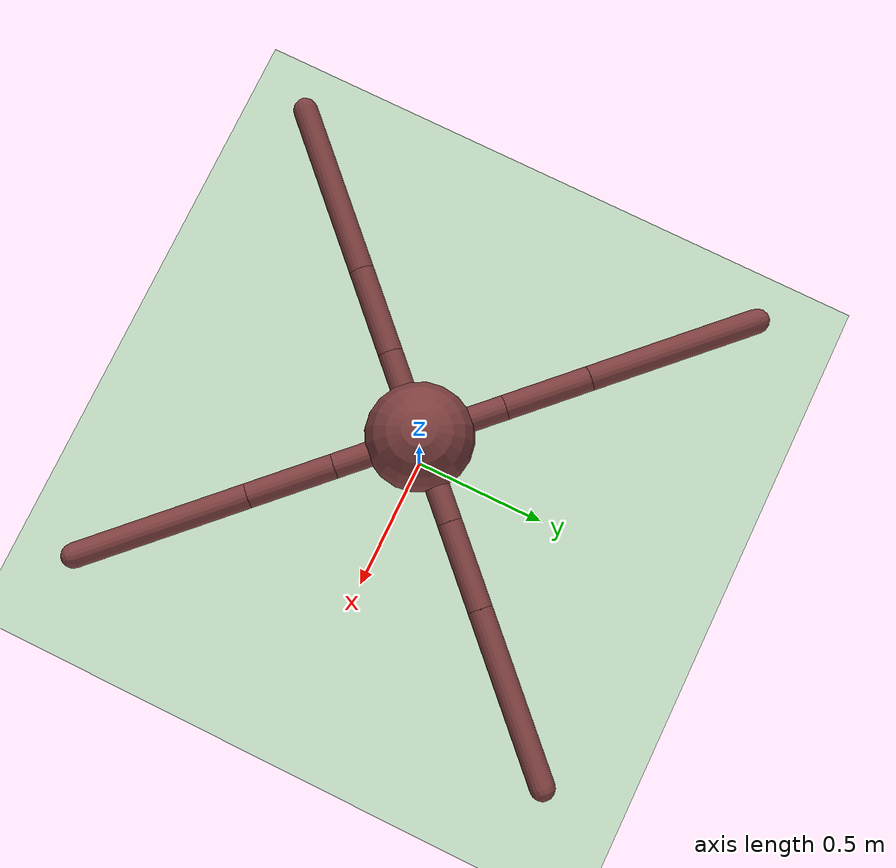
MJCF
<mujoco model="traffic">
  <compiler angle="degree" coordinate="local" inertiafromgeom="true" />

  <option integrator="RK4" iterations="1000" timestep="0.01" />
  <default>
    <joint armature="1" damping="1" limited="true" />
  <default class="agent0"><joint armature="1" damping="1" limited="true" />
    <geom conaffinity="1" condim="3" density="5.0" friction="1 0.5 0.5" margin="0.01" rgba="0.5 0.25 0.25 1" />
    <motor ctrllimited="true" ctrlrange="-.4 .4" />
</default><default class="agent1"><joint armature="1" damping="1" limited="true" />
    <geom conaffinity="1" condim="3" density="5.0" friction="1 0.5 0.5" margin="0.01" rgba="0.25 0.5 0.5 1" />
    <motor ctrllimited="true" ctrlrange="-.4 .4" />
</default></default>
  <asset>
    <texture builtin="gradient" height="100" rgb1="1 1 1" rgb2="0 0 0" type="skybox" width="100" />
    <texture builtin="flat" height="1278" mark="cross" markrgb="1 1 1" name="texgeom" random="0.01" rgb1="0.8 0.6 0.4" rgb2="0.8 0.6 0.4" type="cube" width="127" />
    <texture builtin="checker" height="100" name="texplane" rgb1=".1 .1 .1" rgb2=".3 .3 0.3" type="2d" width="100" />
    <material name="MatPlane" reflectance="0.5" shininess="1" specular="1" texrepeat="60 60" texture="texplane" />
    <material name="geom" texture="texgeom" texuniform="true" />
  </asset>
  <worldbody>
    <light cutoff="100" diffuse="1 1 1" dir="-0 0 -1.3" directional="true" exponent="1" pos="0 0 1.3" specular=".1 .1 .1" />
    <geom conaffinity="1" condim="3" contype="1" friction="1 .1 .1" material="MatPlane" name="floor1" pos="0 0 0" rgba="0.8 0.9 0.8 1" size="20 20 0.125" type="plane"/>
  <body euler="0 0 0" name="agent0/torso" pos="0 0  0.75">
  <geom class="agent0" name="agent0/torso_geom" pos="0 0 0" size="0.175" type="sphere" />
  <joint armature="0" damping="0" limited="false" margin="0.01" name="agent0/root" pos="0 0 0" range="-30 30" type="free" />
  <body name="agent0/front_left_leg" pos="0 0 0">
    <geom class="agent0" fromto="0.0 0.0 0.0 0.2 0.2 0.0" name="agent0/aux_1_geom" size="0.04" type="capsule" />
    <body name="agent0/aux_1" pos="0.2 0.2 0">
      <joint axis="0 0 1" name="agent0/hip_1" pos="0.0 0.0 0.0" range="-30 30" type="hinge" />
      <geom class="agent0" fromto="0.0 0.0 0.0 0.2 0.2 0.0" name="agent0/left_leg_geom" size="0.04" type="capsule" />
      <body name="agent0/anon6536603066" pos="0.2 0.2 0">
        <joint axis="-1 1 0" name="agent0/ankle_1" pos="0.0 0.0 0.0" range="30 70" type="hinge" />
        <geom class="agent0" fromto="0.0 0.0 0.0 0.4 0.4 0.0" name="agent0/left_ankle_geom" size="0.04" type="capsule" />
      </body>
    </body>
  </body>
  <body name="agent0/front_right_leg" pos="0 0 0">
    <geom class="agent0" fromto="0.0 0.0 0.0 -0.2 0.2 0.0" name="agent0/aux_2_geom" size="0.04" type="capsule" />
    <body name="agent0/aux_2" pos="-0.2 0.2 0">
      <joint axis="0 0 1" name="agent0/hip_2" pos="0.0 0.0 0.0" range="-30 30" type="hinge" />
      <geom class="agent0" fromto="0.0 0.0 0.0 -0.2 0.2 0.0" name="agent0/right_leg_geom" size="0.04" type="capsule" />
      <body name="agent0/anon3383659265" pos="-0.2 0.2 0">
        <joint axis="1 1 0" name="agent0/ankle_2" pos="0.0 0.0 0.0" range="-70 -30" type="hinge" />
        <geom class="agent0" fromto="0.0 0.0 0.0 -0.4 0.4 0.0" name="agent0/right_ankle_geom" size="0.04" type="capsule" />
      </body>
    </body>
  </body>
  <body name="agent0/back_leg" pos="0 0 0">
    <geom class="agent0" fromto="0.0 0.0 0.0 -0.2 -0.2 0.0" name="agent0/aux_3_geom" size="0.04" type="capsule" />
    <body name="agent0/aux_3" pos="-0.2 -0.2 0">
      <joint axis="0 0 1" name="agent0/hip_3" pos="0.0 0.0 0.0" range="-30 30" type="hinge" />
      <geom class="agent0" fromto="0.0 0.0 0.0 -0.2 -0.2 0.0" name="agent0/back_leg_geom" size="0.04" type="capsule" />
      <body name="agent0/anon9552781859" pos="-0.2 -0.2 0">
        <joint axis="-1 1 0" name="agent0/ankle_3" pos="0.0 0.0 0.0" range="-70 -30" type="hinge" />
        <geom class="agent0" fromto="0.0 0.0 0.0 -0.4 -0.4 0.0" name="agent0/third_ankle_geom" size="0.04" type="capsule" />
      </body>
    </body>
  </body>
  <body name="agent0/right_back_leg" pos="0 0 0">
    <geom class="agent0" fromto="0.0 0.0 0.0 0.2 -0.2 0.0" name="agent0/aux_4_geom" size="0.04" type="capsule" />
    <body name="agent0/aux_4" pos="0.2 -0.2 0">
      <joint axis="0 0 1" name="agent0/hip_4" pos="0.0 0.0 0.0" range="-30 30" type="hinge" />
      <geom class="agent0" fromto="0.0 0.0 0.0 0.2 -0.2 0.0" name="agent0/rightback_leg_geom" size="0.04" type="capsule" />
      <body name="agent0/anon8050739523" pos="0.2 -0.2 0">
        <joint axis="1 1 0" name="agent0/ankle_4" pos="0.0 0.0 0.0" range="30 70" type="hinge" />
        <geom class="agent0" fromto="0.0 0.0 0.0 0.4 -0.4 0.0" name="agent0/fourth_ankle_geom" size="0.04" type="capsule" />
      </body>
    </body>
  </body>
</body>

<!--body euler="0 0 180" name="agent1/torso" pos="1 0.0 0.75"-->

</worldbody>
<actuator>
  <motor class="agent0" ctrllimited="true" ctrlrange="-1.0 1.0" gear="50" joint="agent0/hip_4" />
  <motor class="agent0" ctrllimited="true" ctrlrange="-1.0 1.0" gear="50" joint="agent0/ankle_4" />
  <motor class="agent0" ctrllimited="true" ctrlrange="-1.0 1.0" gear="50" joint="agent0/hip_1" />
  <motor class="agent0" ctrllimited="true" ctrlrange="-1.0 1.0" gear="50" joint="agent0/ankle_1" />
  <motor class="agent0" ctrllimited="true" ctrlrange="-1.0 1.0" gear="50" joint="agent0/hip_2" />
  <motor class="agent0" ctrllimited="true" ctrlrange="-1.0 1.0" gear="50" joint="agent0/ankle_2" />
  <motor class="agent0" ctrllimited="true" ctrlrange="-1.0 1.0" gear="50" joint="agent0/hip_3" />
  <motor class="agent0" ctrllimited="true" ctrlrange="-1.0 1.0" gear="50" joint="agent0/ankle_3" />
</actuator>

</mujoco>
